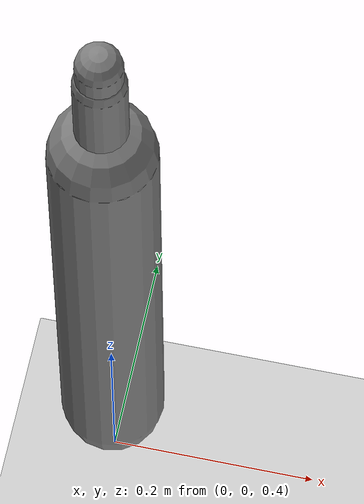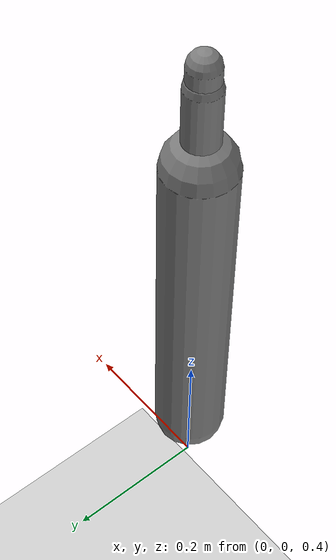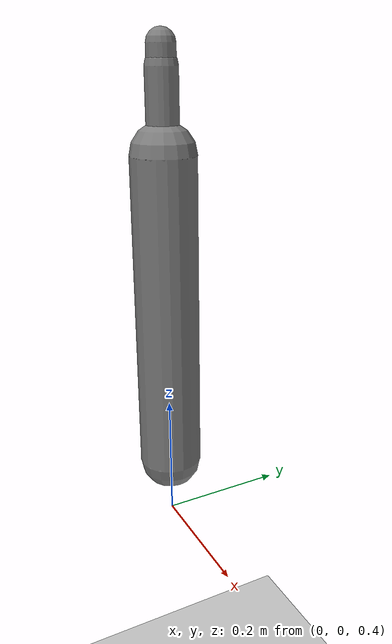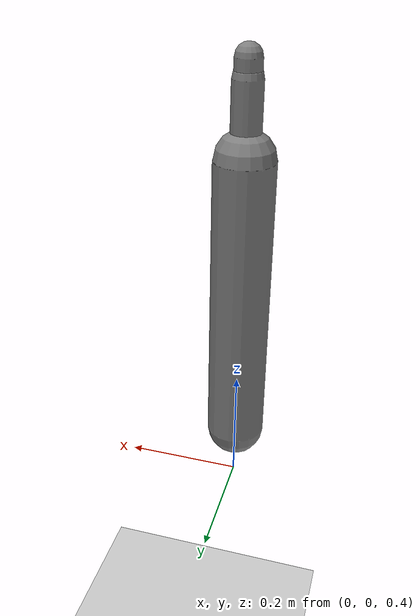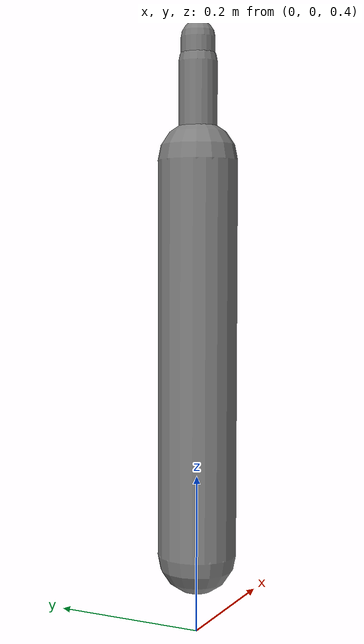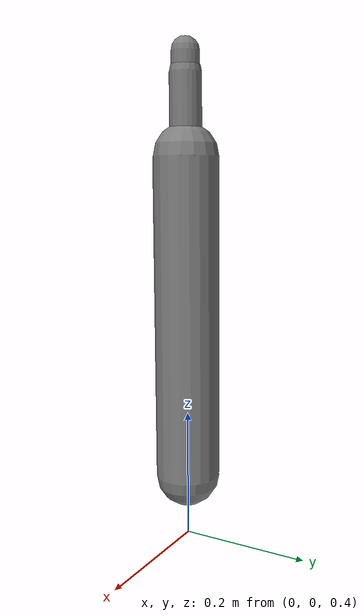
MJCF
<?xml version='1.0' encoding='UTF-8'?>
<mujoco model="RobotModel">
  <option gravity="0 0 -9.81" timestep="0.002" solver="CG" iterations="500" integrator="Euler"/>
  <worldbody>
    <geom name="Floor" type="plane" size="10 10 0.1" pos="0 0 0" rgba="0.8 0.8 0.8 1"/>
    <body name="Limb0" pos="0 0 0.5">
      <geom type="capsule" fromto="0 0 0 0 0 0.5" size="0.05" density="1000" contype="0" conaffinity="0"/>
      <body name="Limb0_aa947944" pos="0 0 0.5">
        <geom type="capsule" fromto="0 0 0 0 0 0.12158792035724622" size="0.02434105685526815" density="800" contype="0" conaffinity="0"/>
        <joint name="Joint_Limb0_Limb0_aa947944_0" type="hinge" axis="1 0 0" range="-60 60"/>
      </body>
      <body name="Limb1_aa947944" pos="0 0 0.5">
        <geom type="capsule" fromto="0 0 0 0 0 0.15137393214887246" size="0.021445259394646" density="800" contype="0" conaffinity="0"/>
        <joint name="Joint_Limb0_Limb1_aa947944_0" type="hinge" axis="0 1 0" range="-60 60"/>
      </body>
    </body>
  </worldbody>
  <actuator>
    <position name="position_Actuator_Joint_Limb0_Limb0_aa947944_0" joint="Joint_Limb0_Limb0_aa947944_0" gear="1.0"/>
    <position name="position_Actuator_Joint_Limb0_Limb1_aa947944_0" joint="Joint_Limb0_Limb1_aa947944_0" gear="1.0"/>
  </actuator>
</mujoco>
